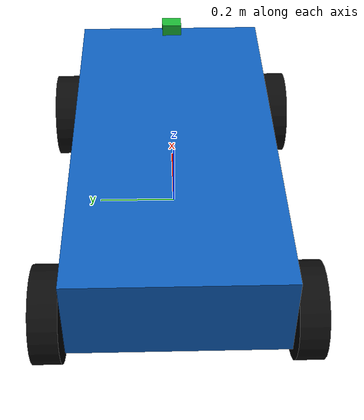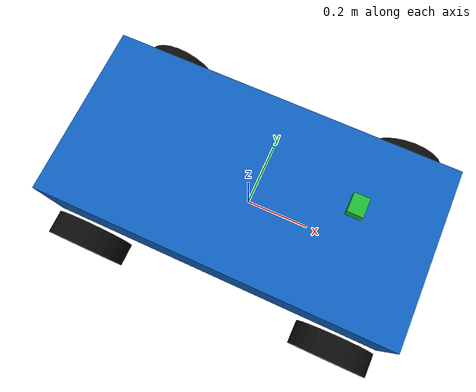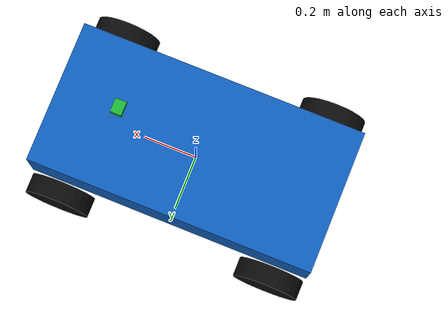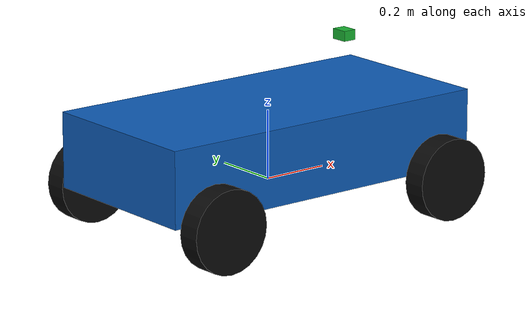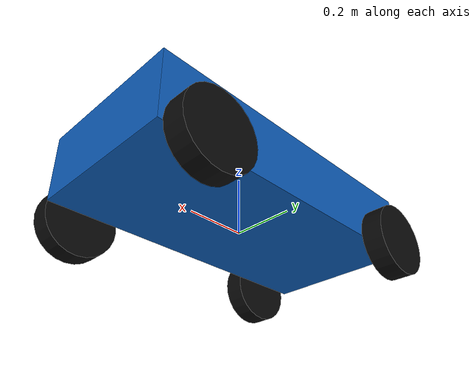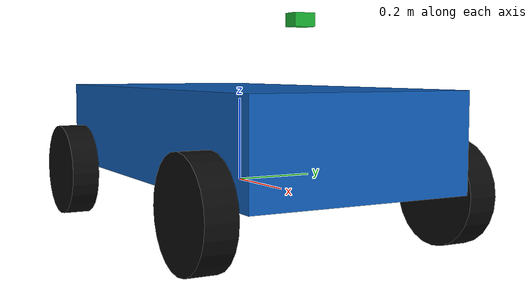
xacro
<?xml version="1.0"?>
<robot xmlns:xacro="http://www.ros.org/wiki/xacro" name="course_ackermann">
  <!-- Dimensions from course_ackermann SDF. SI units, REP-103: x forward, y left, z up.
       Gazebo plugins are not copied; this file is the ROS description. -->

  <xacro:property name="wheel_radius" value="0.12"/>
  <xacro:property name="wheel_width" value="0.07"/>
  <xacro:property name="wheel_mass" value="0.8"/>
  <xacro:property name="track" value="0.62"/>
  <xacro:property name="wheel_base" value="0.80"/>
  <xacro:property name="half_track" value="${track / 2.0}"/>
  <xacro:property name="half_wheel_base" value="${wheel_base / 2.0}"/>
  <xacro:property name="sensor_x" value="0.28"/>
  <xacro:property name="sensor_z" value="0.38"/>
  <xacro:property name="body_mass" value="12.0"/>
  <xacro:property name="knuckle_mass" value="0.2"/>

  <!-- Cylinder spin axis is Y after a +90 deg roll, so Iyy is the axle moment. -->
  <xacro:property name="wheel_iyy" value="${0.5 * wheel_mass * wheel_radius * wheel_radius}"/>
  <xacro:property name="wheel_ixx" value="${wheel_mass * (3.0 * wheel_radius * wheel_radius + wheel_width * wheel_width) / 12.0}"/>

  <material name="body_blue">
    <color rgba="0.05 0.36 0.72 1"/>
  </material>
  <material name="wheel_black">
    <color rgba="0.04 0.04 0.04 1"/>
  </material>
  <material name="camera_green">
    <color rgba="0.1 0.7 0.2 1"/>
  </material>
  <material name="lidar_orange">
    <color rgba="0.9 0.4 0.05 1"/>
  </material>
  <material name="imu_yellow">
    <color rgba="0.9 0.85 0.1 1"/>
  </material>

  <link name="base_link">
    <inertial>
      <origin xyz="0 0 0" rpy="0 0 0"/>
      <mass value="${body_mass}"/>
      <inertia ixx="0.55" ixy="0" ixz="0" iyy="1.10" iyz="0" izz="1.40"/>
    </inertial>
    <visual>
      <origin xyz="0 0 0.12" rpy="0 0 0"/>
      <geometry>
        <box size="1.05 0.52 0.22"/>
      </geometry>
      <material name="body_blue"/>
    </visual>
    <collision>
      <origin xyz="0 0 0.12" rpy="0 0 0"/>
      <geometry>
        <box size="1.05 0.52 0.22"/>
      </geometry>
    </collision>
  </link>

  <xacro:macro name="knuckle" params="name">
    <link name="${name}">
      <inertial>
        <mass value="${knuckle_mass}"/>
        <inertia
          ixx="${knuckle_mass * (0.04 * 0.04 + 0.06 * 0.06) / 12.0}"
          ixy="0" ixz="0"
          iyy="${knuckle_mass * (0.04 * 0.04 + 0.06 * 0.06) / 12.0}"
          iyz="0"
          izz="${knuckle_mass * (0.04 * 0.04 + 0.04 * 0.04) / 12.0}"/>
      </inertial>
      <visual>
        <geometry>
          <box size="0.04 0.04 0.06"/>
        </geometry>
        <material name="wheel_black"/>
      </visual>
      <collision>
        <geometry>
          <box size="0.04 0.04 0.06"/>
        </geometry>
      </collision>
    </link>
  </xacro:macro>

  <xacro:macro name="wheel" params="name parent x y">
    <link name="${name}">
      <inertial>
        <mass value="${wheel_mass}"/>
        <inertia
          ixx="${wheel_ixx}" ixy="0" ixz="0"
          iyy="${wheel_iyy}" iyz="0"
          izz="${wheel_ixx}"/>
      </inertial>
      <visual>
        <origin xyz="0 0 0" rpy="${pi / 2.0} 0 0"/>
        <geometry>
          <cylinder radius="${wheel_radius}" length="${wheel_width}"/>
        </geometry>
        <material name="wheel_black"/>
      </visual>
      <collision>
        <origin xyz="0 0 0" rpy="${pi / 2.0} 0 0"/>
        <geometry>
          <cylinder radius="${wheel_radius}" length="${wheel_width}"/>
        </geometry>
      </collision>
    </link>
    <joint name="${name}_joint" type="continuous">
      <parent link="${parent}"/>
      <child link="${name}"/>
      <origin xyz="${x} ${y} 0" rpy="0 0 0"/>
      <axis xyz="0 1 0"/>
    </joint>
  </xacro:macro>

  <xacro:macro name="front_corner" params="side sign">
    <xacro:knuckle name="front_${side}_knuckle"/>
    <joint name="front_${side}_steering_joint" type="revolute">
      <parent link="base_link"/>
      <child link="front_${side}_knuckle"/>
      <origin xyz="${half_wheel_base} ${sign * half_track} 0" rpy="0 0 0"/>
      <axis xyz="0 0 1"/>
      <limit lower="-0.55" upper="0.55" effort="25" velocity="1.0"/>
    </joint>
    <xacro:wheel
      name="front_${side}_wheel"
      parent="front_${side}_knuckle"
      x="0" y="0"/>
  </xacro:macro>

  <xacro:front_corner side="left" sign="1.0"/>
  <xacro:front_corner side="right" sign="-1.0"/>
  <xacro:wheel name="rear_left_wheel" parent="base_link" x="${-half_wheel_base}" y="${half_track}"/>
  <xacro:wheel name="rear_right_wheel" parent="base_link" x="${-half_wheel_base}" y="${-half_track}"/>

  <xacro:macro name="sensor_box" params="name material">
    <link name="${name}">
      <inertial>
        <mass value="0.04"/>
        <inertia
          ixx="${0.04 * (0.05 * 0.05 + 0.03 * 0.03) / 12.0}"
          ixy="0" ixz="0"
          iyy="${0.04 * (0.04 * 0.04 + 0.03 * 0.03) / 12.0}"
          iyz="0"
          izz="${0.04 * (0.04 * 0.04 + 0.05 * 0.05) / 12.0}"/>
      </inertial>
      <visual>
        <geometry>
          <box size="0.04 0.05 0.03"/>
        </geometry>
        <material name="${material}"/>
      </visual>
      <collision>
        <geometry>
          <box size="0.04 0.05 0.03"/>
        </geometry>
      </collision>
    </link>
  </xacro:macro>

  <xacro:sensor_box name="camera_link" material="camera_green"/>
  <joint name="camera_joint" type="fixed">
    <parent link="base_link"/>
    <child link="camera_link"/>
    <origin xyz="${sensor_x} 0 ${sensor_z}" rpy="0 0 0"/>
  </joint>

  <!-- REP-103 optical frame: z forward, x right, y down. -->
  <link name="camera_optical_frame"/>
  <joint name="camera_optical_joint" type="fixed">
    <parent link="camera_link"/>
    <child link="camera_optical_frame"/>
    <origin xyz="0 0 0" rpy="${-pi / 2.0} 0 ${-pi / 2.0}"/>
  </joint>

  <xacro:sensor_box name="lidar_link" material="lidar_orange"/>
  <joint name="lidar_joint" type="fixed">
    <parent link="base_link"/>
    <child link="lidar_link"/>
    <origin xyz="${sensor_x} 0 ${sensor_z}" rpy="0 0 0"/>
  </joint>

  <xacro:sensor_box name="imu_link" material="imu_yellow"/>
  <joint name="imu_joint" type="fixed">
    <parent link="base_link"/>
    <child link="imu_link"/>
    <origin xyz="${sensor_x} 0 ${sensor_z}" rpy="0 0 0"/>
  </joint>
</robot>
